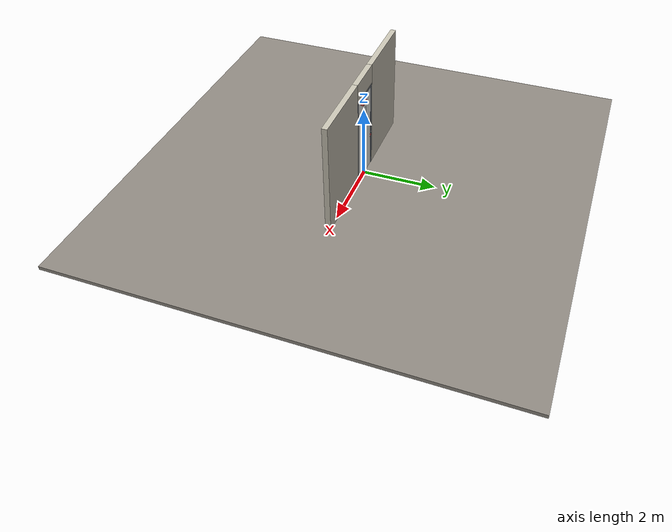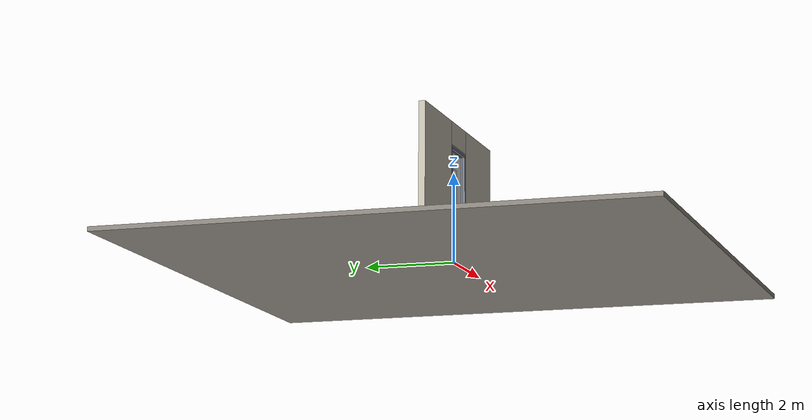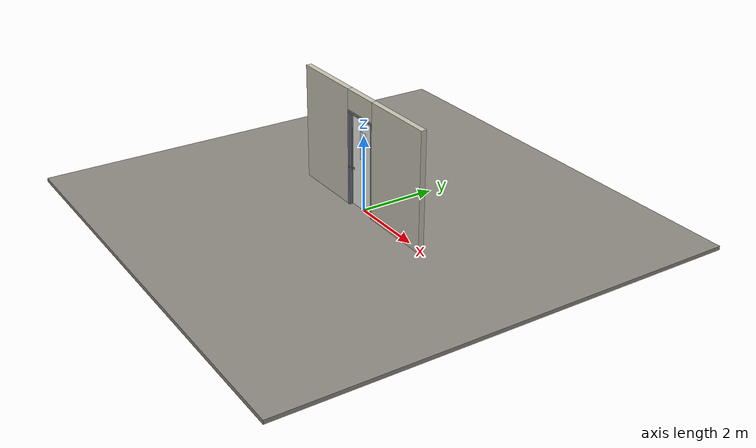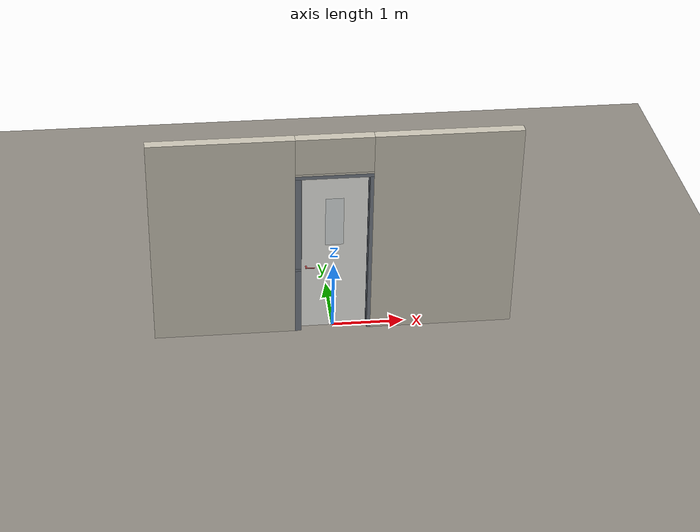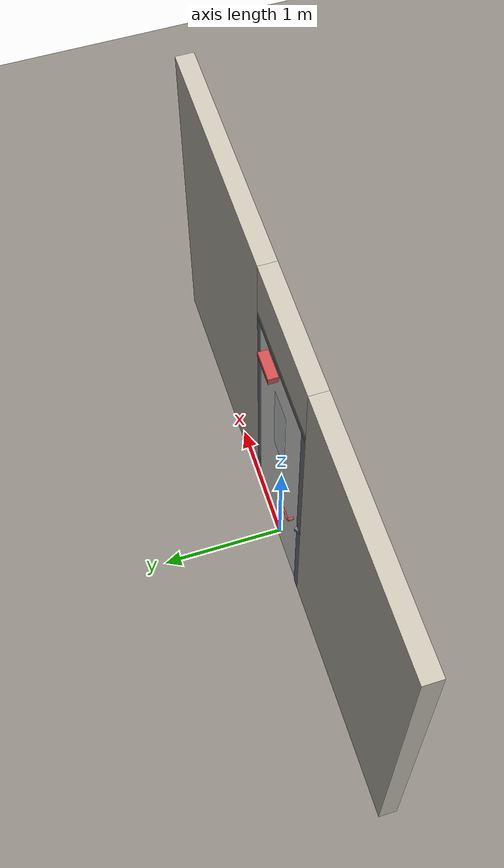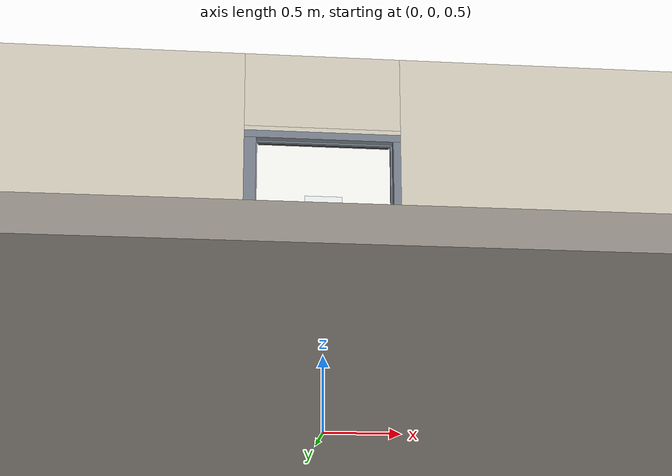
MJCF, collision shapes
<?xml version="1.0" ?>
<mujoco model="db0701_swing_single_simple">
  <compiler angle="radian" meshdir="../../hardware" texturedir="../../textures" autolimits="true" inertiafromgeom="false"/>
  <option timestep="0.002" integrator="implicitfast" cone="elliptic" impratio="10" noslip_iterations="3">
    <flag multiccd="enable"/>
  </option>
  <size memory="16M"/>
  <default>
    <geom condim="4" solref="0.005 1" solimp="0.95 0.99 0.001"/>
    <joint solreflimit="0.005 1" solimplimit="0.95 0.99 0.001"/>
    <tendon solreflimit="0.005 1"/>
    <equality solref="0.002 1"/>
  </default>
  <visual>
    <headlight ambient="0.4 0.4 0.4" diffuse="0.7 0.7 0.7" specular="0.2 0.2 0.2"/>
    <quality shadowsize="4096"/>
    <map znear="0.01" zfar="60"/>
  </visual>
  <asset>
    <mesh name="closer_body_b226fdb10b" file="closer_body_b226fdb10b.obj"/>
    <mesh name="hinge_e22b26c0c1" file="hinge_e22b26c0c1.obj"/>
    <mesh name="hinge_jamb_e1d088f8dc" file="hinge_jamb_e1d088f8dc.obj"/>
    <mesh name="lever_57205841c3" file="lever_57205841c3.obj"/>
    <material name="mat_floor" rgba="0.55 0.53 0.5 1" specular="0.2" shininess="0.15" reflectance="0"/>
    <material name="mat_wall" rgba="0.78 0.76 0.7 1" specular="0.2" shininess="0.1" reflectance="0"/>
    <material name="mat_leaf" rgba="0.93 0.93 0.91 1" specular="0.2" shininess="0.51" reflectance="0"/>
    <material name="mat_glass" rgba="0.9 0.93 0.95 0.6" specular="0.2" shininess="0.5" reflectance="0.1"/>
    <material name="mat_hinge" rgba="0.65 0.66 0.68 1" specular="0.74" shininess="0.5" reflectance="0.36"/>
    <material name="mat_op_black_matte_metal" rgba="0.05 0.05 0.05 1" specular="0.38" shininess="0.3" reflectance="0.12"/>
    <material name="mat_trim" rgba="0.85 0.66 0.3 1" specular="0.8" shininess="0.75" reflectance="0.4"/>
    <material name="mat_bolt" rgba="0.75 0.76 0.77 1" specular="0.8" shininess="0.65" reflectance="0.4"/>
    <material name="mat_frame" rgba="0.45 0.48 0.52 1" specular="0.32" shininess="0.6" reflectance="0.08"/>
    <material name="mat_seal" rgba="0.1 0.1 0.1 1" specular="0.2" shininess="0.1" reflectance="0"/>
    <material name="mat_closer" rgba="0.22 0.17 0.13 1" specular="0.8" shininess="0.6" reflectance="0.4"/>
    <texture name="skybox" type="skybox" builtin="gradient" rgb1="0.6 0.7 0.85" rgb2="0.9 0.92 0.95" width="256" height="256"/>
  </asset>
  <worldbody>
    <light name="sun" pos="1.5 -2.5 4" dir="-0.3 0.5 -0.8" directional="true" diffuse="0.8 0.8 0.8" specular="0.3 0.3 0.3" castshadow="true"/>
    <light name="fill" pos="-1.5 2.5 3" dir="0.3 -0.5 -0.7" directional="true" diffuse="0.35 0.35 0.4" castshadow="false"/>
    <camera name="robot_view" pos="0 -2.966312 2.043887" xyaxes="1 0 0 0 0.26963 0.962964" fovy="52"/>
    <camera name="far_view" pos="0 2.879313 2.043887" xyaxes="-1 0 0 0 -0.26963 0.962964" fovy="52"/>
    <camera name="iso" pos="-2.221337 -2.498663 2.511538" xyaxes="0.741536 -0.670913 0 0.242917 0.268487 0.932151" fovy="46"/>
    <camera name="detail_handle" pos="-0.1105 -0.877 1.296" xyaxes="0.97561 0.219512 0 -0.070934 0.315262 0.94635" fovy="38"/>
    <geom name="floor" type="box" size="6 6 0.05" pos="0 0 -0.05" material="mat_floor" group="0" contype="1" conaffinity="1" friction="0.8 0.005 0.0001" density="2400"/>
    <geom name="wall_left" type="box" size="0.97975 0.0725 1.5255" pos="-1.52025 -0.0435 1.5255" material="mat_wall" group="0" contype="1" conaffinity="1" friction="0.6 0.005 0.0001" density="800"/>
    <geom name="wall_right" type="box" size="0.99475 0.0725 1.5255" pos="1.50525 -0.0435 1.5255" material="mat_wall" group="0" contype="1" conaffinity="1" friction="0.6 0.005 0.0001" density="800"/>
    <geom name="wall_header" type="box" size="0.5255 0.0725 0.26" pos="-0.015 -0.0435 2.791" material="mat_wall" group="0" contype="1" conaffinity="1" friction="0.6 0.005 0.0001" density="800"/>
    <geom name="hinge_0_jamb" type="mesh" mesh="hinge_jamb_e1d088f8dc" pos="0.4575 0.029 0.259" quat="0 0 0 1" material="mat_hinge" group="1" contype="0" conaffinity="0" density="7850"/>
    <geom name="hinge_1_jamb" type="mesh" mesh="hinge_jamb_e1d088f8dc" pos="0.4575 0.029 0.928333" quat="0 0 0 1" material="mat_hinge" group="1" contype="0" conaffinity="0" density="7850"/>
    <geom name="hinge_2_jamb" type="mesh" mesh="hinge_jamb_e1d088f8dc" pos="0.4575 0.029 1.597667" quat="0 0 0 1" material="mat_hinge" group="1" contype="0" conaffinity="0" density="7850"/>
    <geom name="hinge_3_jamb" type="mesh" mesh="hinge_jamb_e1d088f8dc" pos="0.4575 0.029 2.267" quat="0 0 0 1" material="mat_hinge" group="1" contype="0" conaffinity="0" density="7850"/>
    <geom name="jamb_hinge" type="box" size="0.025 0.0725 1.2255" pos="0.4855 -0.0435 1.2255" material="mat_frame" group="0" contype="1" conaffinity="1" friction="0.6 0.005 0.0001" density="300"/>
    <geom name="strike_1016_wall_n" type="box" size="0.04 0.05325 0.018" pos="-0.5005 -0.06275 1.016" material="mat_frame" group="0" contype="1" conaffinity="1" friction="0.6 0.005 0.0001" density="300"/>
    <geom name="strike_1016_wall_p" type="box" size="0.04 0.008 0.018" pos="-0.5005 0.0175 1.016" material="mat_frame" group="0" contype="1" conaffinity="1" friction="0.6 0.005 0.0001" density="300"/>
    <geom name="strike_1016_ramp" type="box" size="0.04 0.018028 0.018" pos="-0.503782 0.018312 1.016" quat="0.957092 0 0 0.289784" material="mat_frame" group="0" contype="1" conaffinity="1" friction="0.12 0.005 0.0001" density="300"/>
    <geom name="strike_1016_back" type="box" size="0.0285 0.0095 0.018" pos="-0.512 0 1.016" material="mat_frame" group="0" contype="1" conaffinity="1" friction="0.6 0.005 0.0001" density="300"/>
    <geom name="jamb_strike_0" type="box" size="0.04 0.0725 0.499" pos="-0.5005 -0.0435 0.499" material="mat_frame" group="0" contype="1" conaffinity="1" friction="0.6 0.005 0.0001" density="300"/>
    <geom name="jamb_strike_1" type="box" size="0.04 0.0725 0.7085" pos="-0.5005 -0.0435 1.7425" material="mat_frame" group="0" contype="1" conaffinity="1" friction="0.6 0.005 0.0001" density="300"/>
    <geom name="jamb_head" type="box" size="0.5255 0.0725 0.025" pos="-0.015 -0.0435 2.476" material="mat_frame" group="0" contype="1" conaffinity="1" friction="0.6 0.005 0.0001" density="300"/>
    <geom name="head_stud" type="box" size="0.5255 0.0725 0.015" pos="-0.015 -0.0435 2.516" material="mat_wall" group="0" contype="1" conaffinity="1" friction="0.6 0.005 0.0001" density="500"/>
    <geom name="stop_hinge" type="box" size="0.0055 0.016 1.2255" pos="0.455 -0.0385 1.2255" material="mat_frame" group="0" contype="1" conaffinity="1" friction="0.6 0.005 0.0001" density="300"/>
    <geom name="stop_strike" type="box" size="0.0055 0.016 1.2255" pos="-0.455 -0.0385 1.2255" material="mat_frame" group="0" contype="1" conaffinity="1" friction="0.6 0.005 0.0001" density="300"/>
    <geom name="stop_head" type="box" size="0.4605 0.016 0.0055" pos="0 -0.0385 2.4455" material="mat_frame" group="0" contype="1" conaffinity="1" friction="0.6 0.005 0.0001" density="300"/>
    <geom name="seal_hinge" type="box" size="0.004 0.002 1.2255" pos="0.4575 -0.024 1.2255" material="mat_seal" group="1" contype="0" conaffinity="0" density="1100"/>
    <geom name="seal_strike" type="box" size="0.004 0.002 1.2255" pos="-0.4575 -0.024 1.2255" material="mat_seal" group="1" contype="0" conaffinity="0" density="1100"/>
    <geom name="seal_head" type="box" size="0.4405 0.002 0.008" pos="0 -0.024 2.439" material="mat_seal" group="1" contype="0" conaffinity="0" density="1100"/>
    <site name="approach_point" pos="0 -1.5 0" quat="1 0 0 0" size="0.05" rgba="0.2 0.9 0.2 0.5" group="4"/>
    <site name="goal_point" pos="0 1.5 0" quat="1 0 0 0" size="0.05" rgba="0.2 0.9 0.2 0.5" group="4"/>
    <site name="door_plane_center" pos="0 0 1.2255" quat="1 0 0 0" size="0.02" rgba="0.2 0.9 0.2 0.5" group="4"/>
    <body name="leaf" pos="0.4605 0 0">
      <inertial pos="-0.437591 0.006713 1.346689" mass="74.965093" quat="0.508337 -0.50809 -0.497467 -0.485763" diaginertia="5.002660286 42.345610678 47.276794593"/>
      <joint name="leaf_hinge" type="hinge" axis="0 0 -1" pos="-0.003 0.029 0" limited="true" range="0 1.745329" solreflimit="0.02 1" damping="10.307281" frictionloss="2.04964" stiffness="12.197635" springref="-2.749713" armature="0.02"/>
      <geom name="leaf_slab" type="box" size="0.457 0.022 1.219" pos="-0.46 0 1.228" material="mat_leaf" group="0" contype="1" conaffinity="1" friction="0.4 0.005 0.0001" density="1"/>
      <geom name="leaf_glass_0" type="box" size="0.125 0.0228 0.3657" pos="-0.46 0 1.7156" material="mat_glass" group="1" contype="0" conaffinity="0" density="1"/>
      <geom name="hinge_0" type="mesh" mesh="hinge_e22b26c0c1" pos="-0.003 0.029 0.259" quat="0 0 0 1" material="mat_hinge" group="1" contype="0" conaffinity="0" density="7850"/>
      <geom name="hinge_1" type="mesh" mesh="hinge_e22b26c0c1" pos="-0.003 0.029 0.928333" quat="0 0 0 1" material="mat_hinge" group="1" contype="0" conaffinity="0" density="7850"/>
      <geom name="hinge_2" type="mesh" mesh="hinge_e22b26c0c1" pos="-0.003 0.029 1.597667" quat="0 0 0 1" material="mat_hinge" group="1" contype="0" conaffinity="0" density="7850"/>
      <geom name="hinge_3" type="mesh" mesh="hinge_e22b26c0c1" pos="-0.003 0.029 2.267" quat="0 0 0 1" material="mat_hinge" group="1" contype="0" conaffinity="0" density="7850"/>
      <geom name="leaf_latch_bolt_faceplate" type="box" size="0.0006 0.014 0.028" pos="-0.9164 0 1.016" material="mat_bolt" group="1" contype="0" conaffinity="0" density="8500"/>
      <geom name="closer_body" type="mesh" mesh="closer_body_b226fdb10b" pos="-0.3 0.022 2.358" quat="0 0 0.707107 0.707107" material="mat_closer" group="1" contype="0" conaffinity="0" density="2000"/>
      <geom name="closer_body_col" type="box" size="0.12 0.04 0.03" pos="-0.3 0.062 2.358" material="mat_closer" group="3" contype="1" conaffinity="1" rgba="0.8 0.3 0.3 0.25" friction="0.6 0.005 0.0001" density="2000"/>
      <site name="leaf_edge_mid" pos="-0.917 0 1.219" quat="1 0 0 0" size="0.02" rgba="0.2 0.9 0.2 0.5" group="4"/>
      <body name="leaf_handle" pos="-0.847 0 1.016">
        <inertial pos="0.019728 0 0" mass="0.753175" quat="0 0.707107 0.707107 0" diaginertia="0.000986163 0.002576944 0.003459458"/>
        <joint name="leaf_handle_hinge" type="hinge" axis="0 1 0" limited="true" range="0 0.87" damping="0.212417" frictionloss="0.042" stiffness="1" springref="-0.35" armature="0.01"/>
        <geom name="leaf_handle_lever_n" type="mesh" mesh="lever_57205841c3" pos="0 -0.022 0" quat="0 0 -0.707107 0.707107" material="mat_op_black_matte_metal" group="1" contype="0" conaffinity="0" density="3000"/>
        <geom name="leaf_handle_lever_col_n" type="capsule" size="0.007 0.053" pos="0.06 -0.077 0" quat="0.707107 0 0.707107 0" material="mat_op_black_matte_metal" group="3" contype="1" conaffinity="1" rgba="0.8 0.3 0.3 0.25" friction="0.7 0.01 0.0001" density="3000"/>
        <geom name="leaf_handle_hub_col_n" type="cylinder" size="0.012 0.022" pos="0 -0.052 0" quat="0.707107 -0.707107 0 0" material="mat_op_black_matte_metal" group="3" contype="1" conaffinity="1" rgba="0.8 0.3 0.3 0.25" friction="0.6 0.005 0.0001" density="3000"/>
        <geom name="leaf_handle_lever_p" type="mesh" mesh="lever_57205841c3" pos="0 0.022 0" quat="0 0 0.707107 0.707107" material="mat_op_black_matte_metal" group="1" contype="0" conaffinity="0" density="3000"/>
        <geom name="leaf_handle_lever_col_p" type="capsule" size="0.007 0.053" pos="0.06 0.077 0" quat="0.707107 0 0.707107 0" material="mat_op_black_matte_metal" group="3" contype="1" conaffinity="1" rgba="0.8 0.3 0.3 0.25" friction="0.7 0.01 0.0001" density="3000"/>
        <geom name="leaf_handle_hub_col_p" type="cylinder" size="0.012 0.022" pos="0 0.052 0" quat="0.707107 -0.707107 0 0" material="mat_op_black_matte_metal" group="3" contype="1" conaffinity="1" rgba="0.8 0.3 0.3 0.25" friction="0.6 0.005 0.0001" density="3000"/>
        <site name="leaf_handle_grip_n" pos="0.096 -0.077 0" quat="1 0 0 0" size="0.012" rgba="0.2 0.9 0.2 0.5" group="4"/>
        <site name="leaf_handle_grip_p" pos="0.096 0.077 0" quat="1 0 0 0" size="0.012" rgba="0.2 0.9 0.2 0.5" group="4"/>
      </body>
      <body name="leaf_latch_bolt" pos="-0.917 0 1.016">
        <inertial pos="0.0055 0 0" mass="0.074627" quat="0.92388 0.382683 0 0" diaginertia="0.000002271 0.000013255 0.000013255"/>
        <joint name="leaf_latch_bolt_slide" type="slide" axis="1 0 0" limited="true" range="0 0.019" damping="2" frictionloss="0.3" stiffness="550" springref="-0.01" armature="0.1"/>
        <geom name="leaf_latch_bolt_capsule" type="capsule" size="0.008 0.0165" pos="0.0055 0 0" quat="0.707107 0 -0.707107 0" material="mat_bolt" group="0" contype="1" conaffinity="1" friction="0.2 0.005 0.0001" density="8500"/>
      </body>
    </body>
  </worldbody>
  <tendon>
    <fixed name="leaf_latch_bolt_coupling" limited="true" range="0 10">
      <joint joint="leaf_latch_bolt_slide" coef="1"/>
      <joint joint="leaf_handle_hinge" coef="-0.023457"/>
    </fixed>
  </tendon>
  <sensor>
    <jointpos name="leaf_hinge_pos" joint="leaf_hinge"/>
    <jointvel name="leaf_hinge_vel" joint="leaf_hinge"/>
    <jointpos name="leaf_handle_hinge_pos" joint="leaf_handle_hinge"/>
    <jointvel name="leaf_handle_hinge_vel" joint="leaf_handle_hinge"/>
    <jointpos name="leaf_latch_bolt_slide_pos" joint="leaf_latch_bolt_slide"/>
    <jointvel name="leaf_latch_bolt_slide_vel" joint="leaf_latch_bolt_slide"/>
  </sensor>
</mujoco>
